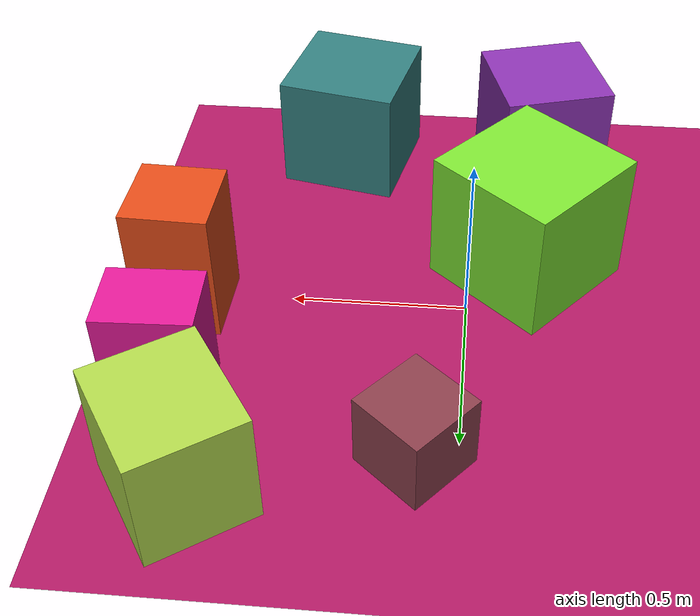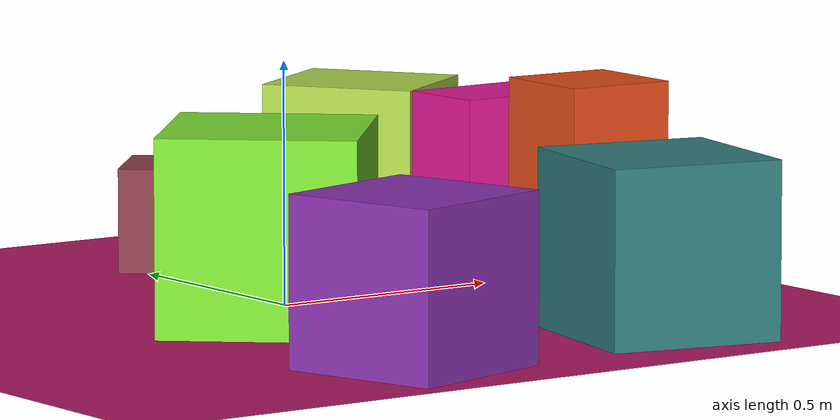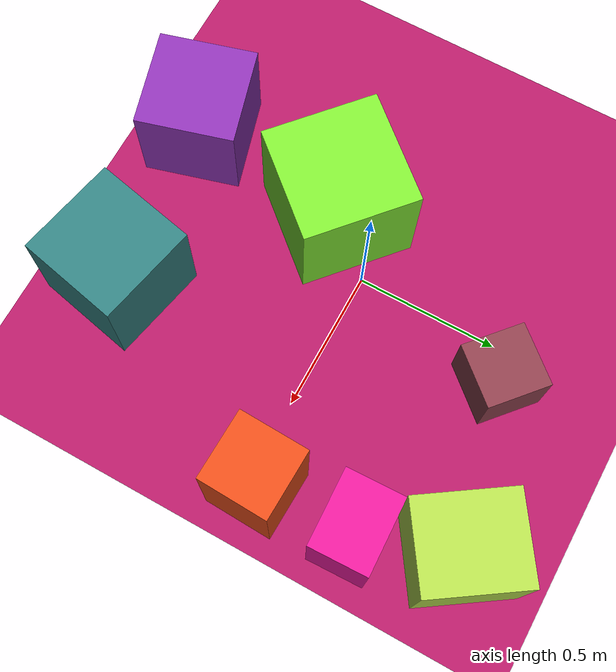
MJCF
<mujoco>
   <asset>
<texture type="skybox" builtin="gradient" rgb1="0.3 0.2 0.3" rgb2="0.4 0.4 0.7" width="500" height="500"/>
<texture name="gradient_0" builtin="gradient" rgb1="0.9 0.1 0.5" rgb2="0.9 0.1 0.7" width="500" height="500"/>
<texture name="flat_1" builtin="flat" rgb1="0.5 0.9 0.2" rgb2="0.5 0.9 0.2"  width="500" height="500"/>
<texture name="checker_2" builtin="checker" rgb1="0.9 0.0 0.7" rgb2="0.2 0.4 0.7" width="500" height="500"/>
<texture name="gradient_3" builtin="gradient" rgb1="0.3 0.2 0.3" rgb2="0.1 0.8 0.7" width="500" height="500"/>
<texture name="checker_4" builtin="checker" rgb1="0.9 1.0 0.2" rgb2="0.5 0.7 0.4" width="500" height="500"/>
<texture name="gradient_5" builtin="gradient" rgb1="0.5 0.1 0.1" rgb2="0.6 0.4 0.5" width="500" height="500"/>
<texture name="gradient_6" builtin="gradient" rgb1="1.0 0.4 0.1" rgb2="0.8 0.2 0.1" width="500" height="500"/><material name="gradient_0_mat" reflectance="0.5447740974328292" texture="gradient_0" texuniform="true"/>
<material name="flat_1_mat" reflectance="0.8163960057218056" texture="flat_1" texuniform="true"/>
<material name="checker_2_mat" reflectance="0.21154842571979504" texrepeat="3 3" texture="checker_2" texuniform="false" />
<material name="gradient_3_mat" reflectance="0.7363096762290682" texture="gradient_3" texuniform="true"/>
<material name="checker_4_mat" reflectance="0.36405715173458353" texrepeat="10 10" texture="checker_4" texuniform="false" />
<material name="gradient_5_mat" reflectance="0.04292505847980921" texture="gradient_5" texuniform="true"/>
<material name="gradient_6_mat" reflectance="0.40328679248533006" texture="gradient_6" texuniform="true"/>
   </asset>

   <worldbody>
     <geom type="plane" size="1 1 0.1" rgba="0.7 0.1 0.4 1" />
<light pos="-0.37380632901399125 -0.3006141715201933 2" dir="0 0 -1" cutoff="90" diffuse="1 1 1" specular="1 1 1"/>
<light pos="-0.04032440055274855 0.6525396243524191 2" dir="0 0 -1" cutoff="90" diffuse="1 1 1" specular="1 1 1"/>
<geom type="box" pos="0.79 0.38 0.17" size="0.13 0.1 0.17" material="gradient_0_mat" euler="0 0 2" />
<geom type="box" pos="-0.17 -0.19 0.2" size="0.2 0.2 0.2" material="flat_1_mat" euler="0 0 49" />
<geom type="box" pos="-0.22 -0.76 0.17" size="0.17 0.17 0.17" material="checker_2_mat" euler="0 0 16" />
<geom type="box" pos="0.4 -0.72 0.18" size="0.18 0.18 0.18" material="gradient_3_mat" euler="0 0 78" />
<geom type="box" pos="0.68 0.7 0.17" size="0.15 0.17 0.17" material="checker_4_mat" euler="0 0 34" />
<geom type="box" pos="0.11 0.56 0.11" size="0.11 0.11 0.11" material="gradient_5_mat" euler="0 0 49" />
<geom type="box" pos="0.8 0.04 0.2" size="0.12 0.12 0.2" material="gradient_6_mat" euler="0 0 88" /><camera euler="60 0 180" fovy="60" name="camera2" pos="0.2 -1.5 1"></camera>   </worldbody>
   <visual>
      <headlight diffuse="0.7 0.7 0.7"/>
   </visual>
</mujoco>
